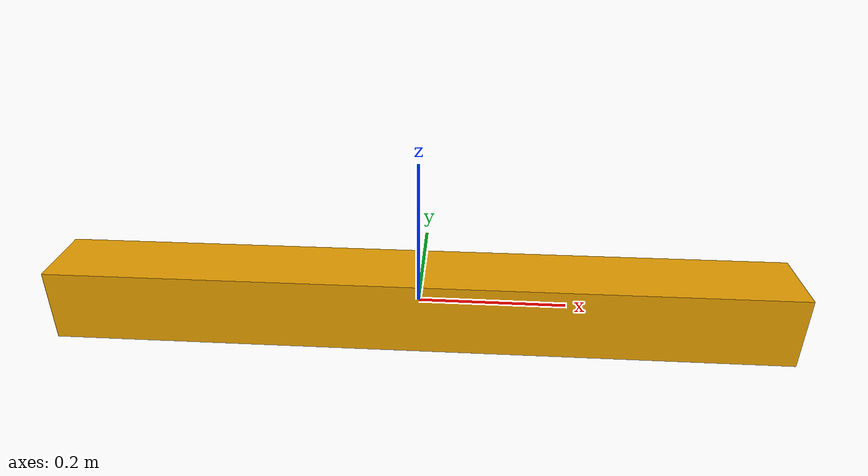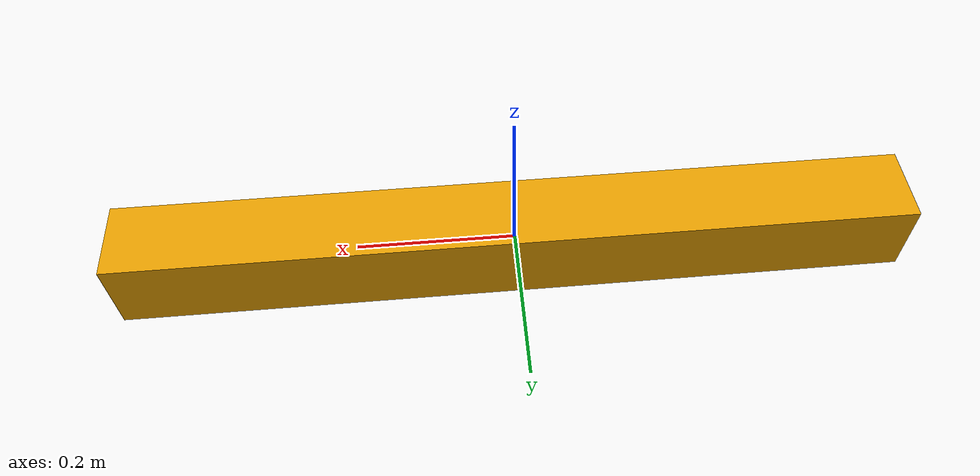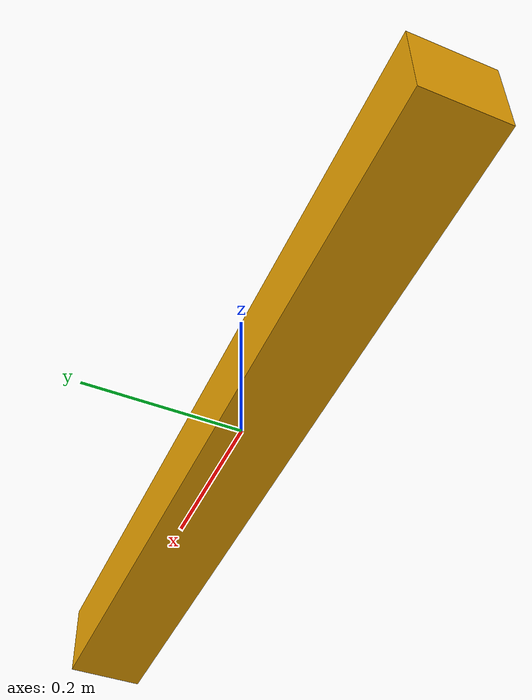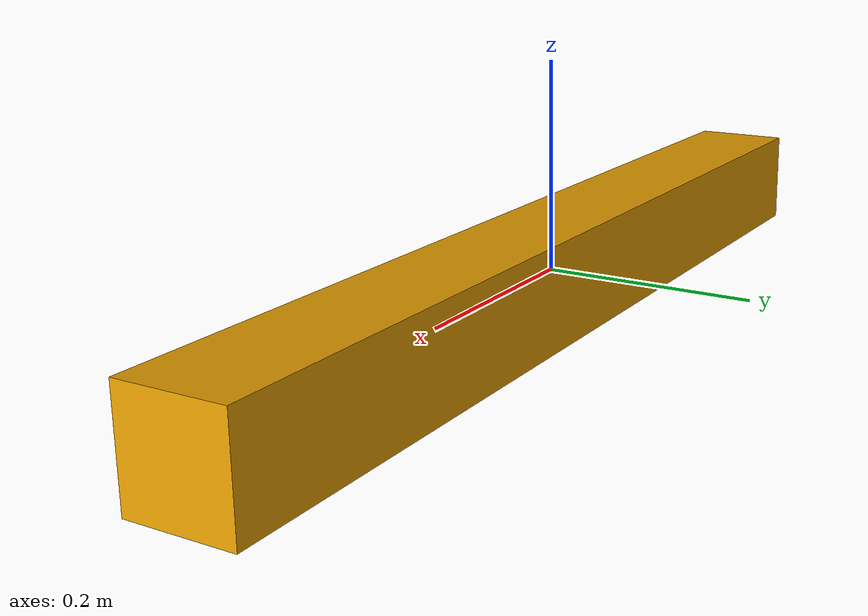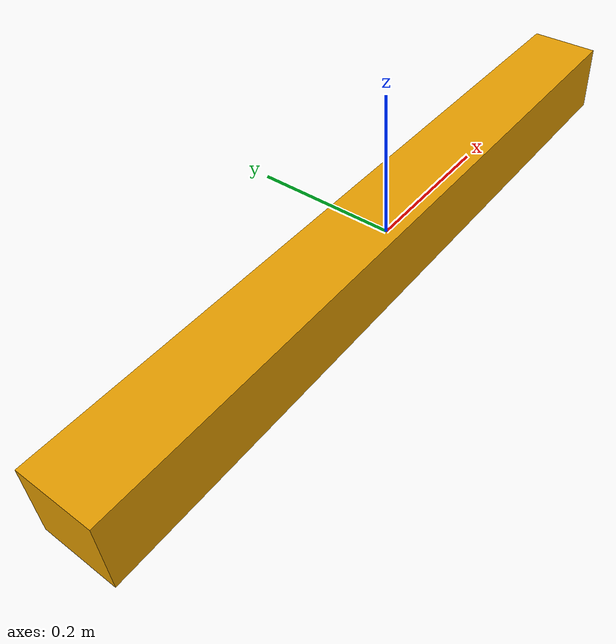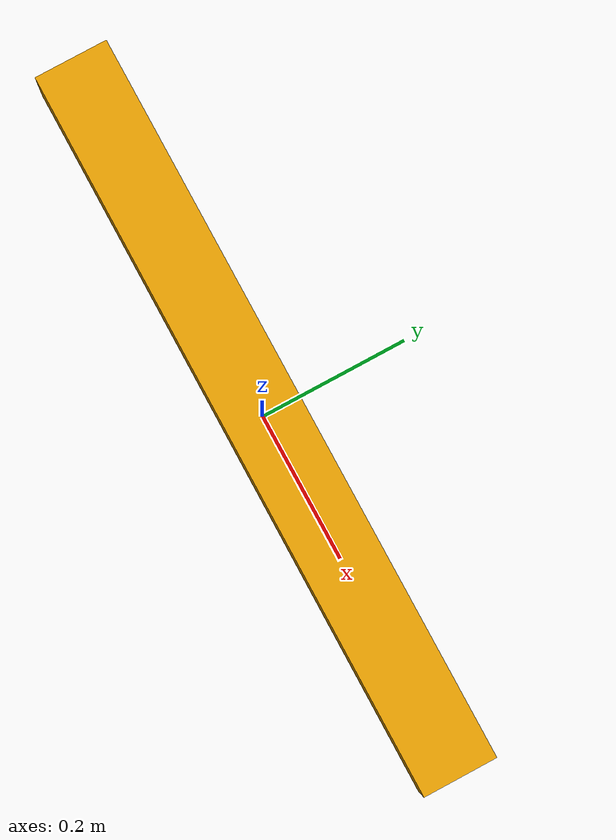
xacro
<?xml version="1.0"?>
<robot xmlns:xacro="http://www.ros.org/wiki/xacro">

    <xacro:property name="num_marker" value="0" />
    <xacro:property name="dim" value="1.0" />
    <xacro:property name="m" value="100" />

<link name="obstacle">
   <inertial>
      <origin xyz="0 0 0" />
      <mass value="${m}" />
      <inertia  ixx="${m*m/12.0}" ixy="0.0"  ixz="0.0"  iyy="${m*m/12.0}"  iyz="0.0"  izz="${m*m/12.0}" />
    </inertial>
    <visual>
      <geometry>
        <box size="${dim} ${dim*0.1} ${dim*0.1}" />
      </geometry>
    </visual>

    <collision>
      <geometry>
        <box size="${dim} ${dim*0.1} ${dim*0.1}" />
      </geometry>
    </collision>
</link>
    <gazebo reference="obstacle">
    <mu1>100.0</mu1>
    <mu2>100.0</mu2>
    <minDepth>0.003</minDepth>
    <maxVel>0</maxVel>
    </gazebo>
</robot>
